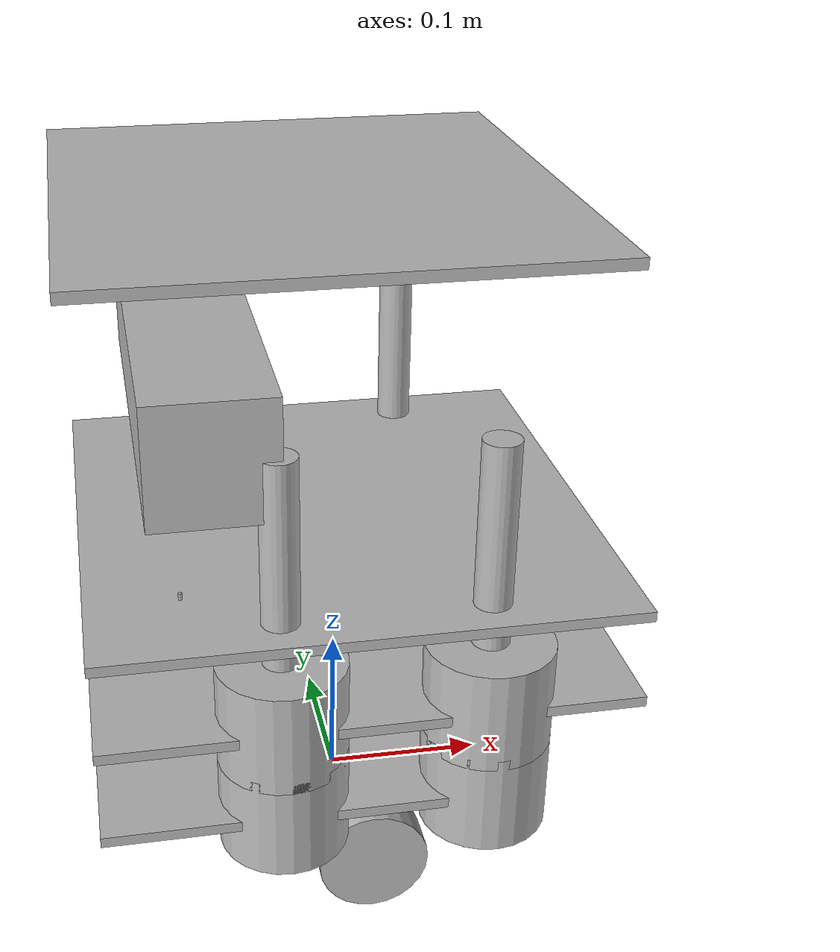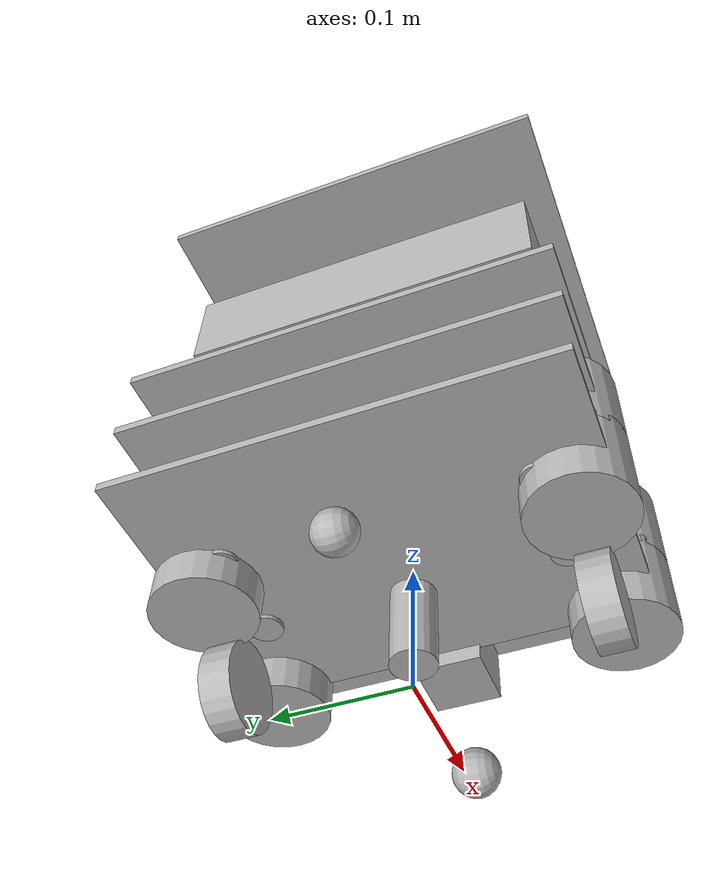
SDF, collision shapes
<?xml version="1.0" ?>
<sdf version="1.5">
  <model name="turtlebot">
    <link name="rack">
      <inertial>
        <pose>0.001453 -0.000453 0.029787 0 0 0</pose>
        <inertia>
          <ixx>0.058640</ixx>
          <ixy>0.000124</ixy>
          <ixz>0.000615</ixz>
          <iyy>0.058786</iyy>
          <iyz>0.000014</iyz>
          <izz>1.532440</izz>
        </inertia>
        <mass>2.234000</mass>
      </inertial>
      <collision name="plate_0_collision">
        <pose>-0.043340 0 0.084757 0 0 0</pose>
        <geometry>
          <box>
            <size>0.233502 0.314845 0.006401</size>
          </box>
        </geometry>
      </collision>
      <visual name="plate_0_visual">
        <pose>-0.043340 0 0.084757 0 0 0</pose>
        <geometry>
          <mesh>
            <uri>model://turtlebot/meshes/plate_0_logo.dae</uri>
          </mesh>
        </geometry>
      </visual>
      <collision name="plate_1_collision">
        <pose>-0.002660 0 0.141907 0 0 0</pose>
        <geometry>
          <box>
            <size>0.314856 0.314856 0.006401</size>
          </box>
        </geometry>
      </collision>
      <visual name="plate_1_visual">
        <pose>-0.002660 0 0.141907 0 0 0</pose>
        <geometry>
          <mesh>
            <uri>model://turtlebot/meshes/plate_1_logo.dae</uri>
          </mesh>
        </geometry>
      </visual>
      <collision name="plate_2_collision">
        <pose>-0.002660 0 0.199108 0 0 0</pose>
        <geometry>
          <box>
            <size>0.314856 0.314856 0.006401</size>
          </box>
        </geometry>
      </collision>
      <visual name="plate_2_visual">
        <pose>-0.002660 0 0.199108 0 0 0</pose>
        <geometry>
          <mesh>
            <uri>model://turtlebot/meshes/plate_1_logo.dae</uri>
          </mesh>
        </geometry>
      </visual>
      <collision name="plate_3_collision">
        <pose>-0.015820 0 0.405457 0 0 0</pose>
        <geometry>
          <box>
            <size>0.288000 0.315000 0.006401</size>
          </box>
        </geometry>
      </collision>
      <visual name="plate_3_visual">
        <pose>-0.015820 0 0.405457 0 0 0</pose>
        <geometry>
          <mesh>
            <uri>model://turtlebot/meshes/plate_2_logo.dae</uri>
          </mesh>
        </geometry>
      </visual>
      <collision name="spacer_0_collision">
        <pose>-0.002540 0.111468 0.079992 0 0 0</pose>
        <geometry>
          <cylinder>
            <radius>0.012700</radius>
            <length>0.003175</length>
          </cylinder>
        </geometry>
      </collision>
      <visual name="spacer_0_visual">
        <pose>-0.002540 0.111468 0.079992 0 0 0</pose>
        <geometry>
          <mesh>
            <uri>model://turtlebot/meshes/68-02403-125_Spacer.dae</uri>
          </mesh>
        </geometry>
      </visual>
      <collision name="spacer_1_collision">
        <pose>-0.002540 -0.111468 0.079992 0 0 0</pose>
        <geometry>
          <cylinder>
            <radius>0.012700</radius>
            <length>0.003175</length>
          </cylinder>
        </geometry>
      </collision>
      <visual name="spacer_1_visual">
        <pose>-0.002540 -0.111468 0.079992 0 0 0</pose>
        <geometry>
          <mesh>
            <uri>model://turtlebot/meshes/68-02403-125_Spacer.dae</uri>
          </mesh>
        </geometry>
      </visual>
      <collision name="spacer_2_collision">
        <pose>-0.072390 -0.111468 0.079992 0 0 0</pose>
        <geometry>
          <cylinder>
            <radius>0.012700</radius>
            <length>0.003175</length>
          </cylinder>
        </geometry>
      </collision>
      <visual name="spacer_2_visual">
        <pose>-0.072390 -0.111468 0.079992 0 0 0</pose>
        <geometry>
          <mesh>
            <uri>model://turtlebot/meshes/68-02403-125_Spacer.dae</uri>
          </mesh>
        </geometry>
      </visual>
      <collision name="spacer_3_collision">
        <pose>-0.072390 0.111468 0.079992 0 0 0</pose>
        <geometry>
          <cylinder>
            <radius>0.012700</radius>
            <length>0.003175</length>
          </cylinder>
        </geometry>
      </collision>
      <visual name="spacer_3_visual">
        <pose>-0.072390 0.111468 0.079992 0 0 0</pose>
        <geometry>
          <mesh>
            <uri>model://turtlebot/meshes/68-02403-125_Spacer.dae</uri>
          </mesh>
        </geometry>
      </visual>
      <collision name="standoff_2in_0_collision">
        <pose>0.067640 0.131420 0.087980 0 0 0</pose>
        <geometry>
          <cylinder>
            <radius>0.038100</radius>
            <length>0.063500</length>
          </cylinder>
        </geometry>
      </collision>
      <visual name="standoff_2in_0_visual">
        <pose>0.067640 0.131420 0.087980 0 0 0</pose>
        <geometry>
          <mesh>
            <uri>model://turtlebot/meshes/68-04552-2000-RA_Turtlebot_M-F_Standoff.dae</uri>
          </mesh>
        </geometry>
      </visual>
      <collision name="standoff_2in_1_collision">
        <pose>0.067640 -0.131420 0.087980 0 0 0</pose>
        <geometry>
          <cylinder>
            <radius>0.038100</radius>
            <length>0.063500</length>
          </cylinder>
        </geometry>
      </collision>
      <visual name="standoff_2in_1_visual">
        <pose>0.067640 -0.131420 0.087980 0 0 0</pose>
        <geometry>
          <mesh>
            <uri>model://turtlebot/meshes/68-04552-2000-RA_Turtlebot_M-F_Standoff.dae</uri>
          </mesh>
        </geometry>
      </visual>
      <collision name="standoff_2in_2_collision">
        <pose>-0.052832 -0.131420 0.087980 0 0 0</pose>
        <geometry>
          <cylinder>
            <radius>0.038100</radius>
            <length>0.063500</length>
          </cylinder>
        </geometry>
      </collision>
      <visual name="standoff_2in_2_visual">
        <pose>-0.052832 -0.131420 0.087980 0 0 0</pose>
        <geometry>
          <mesh>
            <uri>model://turtlebot/meshes/68-04552-2000-RA_Turtlebot_M-F_Standoff.dae</uri>
          </mesh>
        </geometry>
      </visual>
      <collision name="standoff_2in_3_collision">
        <pose>-0.052832 0.131420 0.087980 0 0 0</pose>
        <geometry>
          <cylinder>
            <radius>0.038100</radius>
            <length>0.063500</length>
          </cylinder>
        </geometry>
      </collision>
      <visual name="standoff_2in_3_visual">
        <pose>-0.052832 0.131420 0.087980 0 0 0</pose>
        <geometry>
          <mesh>
            <uri>model://turtlebot/meshes/68-04552-2000-RA_Turtlebot_M-F_Standoff.dae</uri>
          </mesh>
        </geometry>
      </visual>
      <collision name="standoff_2in_4_collision">
        <pose>0.067640 0.131420 0.145130 0 0 0</pose>
        <geometry>
          <cylinder>
            <radius>0.038100</radius>
            <length>0.063500</length>
          </cylinder>
        </geometry>
      </collision>
      <visual name="standoff_2in_4_visual">
        <pose>0.067640 0.131420 0.145130 0 0 0</pose>
        <geometry>
          <mesh>
            <uri>model://turtlebot/meshes/68-04552-2000-RA_Turtlebot_M-F_Standoff.dae</uri>
          </mesh>
        </geometry>
      </visual>
      <collision name="standoff_2in_5_collision">
        <pose>0.067640 -0.131420 0.145130 0 0 0</pose>
        <geometry>
          <cylinder>
            <radius>0.038100</radius>
            <length>0.063500</length>
          </cylinder>
        </geometry>
      </collision>
      <visual name="standoff_2in_5_visual">
        <pose>0.067640 -0.131420 0.145130 0 0 0</pose>
        <geometry>
          <mesh>
            <uri>model://turtlebot/meshes/68-04552-2000-RA_Turtlebot_M-F_Standoff.dae</uri>
          </mesh>
        </geometry>
      </visual>
      <collision name="standoff_2in_6_collision">
        <pose>-0.052832 -0.131420 0.145130 0 0 0</pose>
        <geometry>
          <cylinder>
            <radius>0.038100</radius>
            <length>0.063500</length>
          </cylinder>
        </geometry>
      </collision>
      <visual name="standoff_2in_6_visual">
        <pose>-0.052832 -0.131420 0.145130 0 0 0</pose>
        <geometry>
          <mesh>
            <uri>model://turtlebot/meshes/68-04552-2000-RA_Turtlebot_M-F_Standoff.dae</uri>
          </mesh>
        </geometry>
      </visual>
      <collision name="standoff_2in_7_collision">
        <pose>-0.052832 0.131420 0.145130 0 0 0</pose>
        <geometry>
          <cylinder>
            <radius>0.038100</radius>
            <length>0.063500</length>
          </cylinder>
        </geometry>
      </collision>
      <visual name="standoff_2in_7_visual">
        <pose>-0.052832 0.131420 0.145130 0 0 0</pose>
        <geometry>
          <mesh>
            <uri>model://turtlebot/meshes/68-04552-2000-RA_Turtlebot_M-F_Standoff.dae</uri>
          </mesh>
        </geometry>
      </visual>
      <collision name="standoff_8in_0_collision">
        <pose>0.067640 0.131420 0.202280 0 0 0</pose>
        <geometry>
          <cylinder>
            <radius>0.011113</radius>
            <length>0.203200</length>
          </cylinder>
        </geometry>
      </collision>
      <visual name="standoff_8in_0_visual">
        <pose>0.067640 0.131420 0.202280 0 0 0</pose>
        <geometry>
          <mesh>
            <uri>model://turtlebot/meshes/68-02421-8000-RA_Turtlebot_F-F_Standoff.dae</uri>
          </mesh>
        </geometry>
      </visual>
      <collision name="standoff_8in_1_collision">
        <pose>0.067640 -0.131420 0.202280 0 0 0</pose>
        <geometry>
          <cylinder>
            <radius>0.011113</radius>
            <length>0.203200</length>
          </cylinder>
        </geometry>
      </collision>
      <visual name="standoff_8in_1_visual">
        <pose>0.067640 -0.131420 0.202280 0 0 0</pose>
        <geometry>
          <mesh>
            <uri>model://turtlebot/meshes/68-02421-8000-RA_Turtlebot_F-F_Standoff.dae</uri>
          </mesh>
        </geometry>
      </visual>
      <collision name="standoff_8in_2_collision">
        <pose>-0.052832 -0.131420 0.202280 0 0 0</pose>
        <geometry>
          <cylinder>
            <radius>0.011113</radius>
            <length>0.203200</length>
          </cylinder>
        </geometry>
      </collision>
      <visual name="standoff_8in_2_visual">
        <pose>-0.052832 -0.131420 0.202280 0 0 0</pose>
        <geometry>
          <mesh>
            <uri>model://turtlebot/meshes/68-02421-8000-RA_Turtlebot_F-F_Standoff.dae</uri>
          </mesh>
        </geometry>
      </visual>
      <collision name="standoff_8in_3_collision">
        <pose>-0.052832 0.131420 0.202280 0 0 0</pose>
        <geometry>
          <cylinder>
            <radius>0.011113</radius>
            <length>0.203200</length>
          </cylinder>
        </geometry>
      </collision>
      <visual name="standoff_8in_3_visual">
        <pose>-0.052832 0.131420 0.202280 0 0 0</pose>
        <geometry>
          <mesh>
            <uri>model://turtlebot/meshes/68-02421-8000-RA_Turtlebot_F-F_Standoff.dae</uri>
          </mesh>
        </geometry>
      </visual>
      <collision name="standoff_kinect_0_collision">
        <pose>-0.105098 0.098000 0.202308 0 0 0</pose>
        <geometry>
          <cylinder>
            <radius>0.001111</radius>
            <length>0.008585</length>
          </cylinder>
        </geometry>
      </collision>
      <visual name="standoff_kinect_0_visual">
        <pose>-0.105098 0.098000 0.202308 0 0 0</pose>
        <geometry>
          <mesh>
            <uri>model://turtlebot/meshes/68-04556-RA_Kinect_Standoff_Assy.dae</uri>
          </mesh>
        </geometry>
      </visual>
      <collision name="standoff_kinect_1_collision">
        <pose>-0.105098 -0.098000 0.202308 0 0 0</pose>
        <geometry>
          <cylinder>
            <radius>0.001111</radius>
            <length>0.008585</length>
          </cylinder>
        </geometry>
      </collision>
      <visual name="standoff_kinect_1_visual">
        <pose>-0.105098 -0.098000 0.202308 0 0 0</pose>
        <geometry>
          <mesh>
            <uri>model://turtlebot/meshes/68-04556-RA_Kinect_Standoff_Assy.dae</uri>
          </mesh>
        </geometry>
      </visual>
      <sensor name="laser" type="ray">
        <pose>-0.065000 0 0.092000 0 0 0</pose>
        <ray>
          <scan>
            <horizontal>
              <samples>180</samples>
              <resolution>1.000000</resolution>
              <min_angle>-2.268928</min_angle>
              <max_angle>2.268928</max_angle>
            </horizontal>
          </scan>
          <range>
            <min>0.080000</min>
            <max>10</max>
            <resolution>0.010000</resolution>
          </range>
        </ray>
        <update_rate>20</update_rate>
      </sensor>
    </link>
    <include>
      <uri>model://create</uri>
    </include>
    <include>
      <uri>model://kinect</uri>
      <pose>-0.087098 0 0.303857 0 0 0</pose>
    </include>
    <joint name="create_rack" type="revolute">
      <parent>create::base</parent>
      <child>rack</child>
      <axis>
        <xyz>0 0 1</xyz>
        <limit>
          <lower>0</lower>
          <upper>0</upper>
        </limit>
        <use_parent_model_frame>true</use_parent_model_frame>
      </axis>
    </joint>
    <joint name="kinect_rack" type="revolute">
      <parent>kinect::link</parent>
      <child>rack</child>
      <axis>
        <xyz>0 0 1</xyz>
        <limit>
          <lower>0</lower>
          <upper>0</upper>
        </limit>
        <use_parent_model_frame>true</use_parent_model_frame>
      </axis>
    </joint>
    <include>
      <uri>model://hokuyo</uri>
      <pose>0.095 0.0 0.105 0 0 0</pose>
    </include>
    <joint name="hokuyo_joint" type="fixed">
      <child>hokuyo::link</child>
      <parent>create::base</parent>
    </joint>
  </model>
</sdf>

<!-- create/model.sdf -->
<sdf version="1.5">
  <model name="create">
    <link name="base">
      <inertial>
        <pose>0.001453 -0.000453 0.029787 0 0 0</pose>
        <inertia>
          <ixx>0.058640</ixx>
          <ixy>0.000124</ixy>
          <ixz>0.000615</ixz>
          <iyy>0.058786</iyy>
          <iyz>0.000014</iyz>
          <izz>1.532440</izz>
        </inertia>
        <mass>2.234000</mass>
      </inertial>
      <collision name="base_collision">
        <pose>0 0 0.047800 0 0 0</pose>
        <geometry>
          <cylinder>
            <radius>0.016495</radius>
            <length>0.061163</length>
          </cylinder>
        </geometry>
      </collision>
      <visual name="base_visual">
        <pose>0 0 0.047800 0 0 0</pose>
        <geometry>
          <mesh>
            <uri>model://create/meshes/create_body.dae</uri>
          </mesh>
        </geometry>
      </visual>
      <collision name="front_wheel_collision">
        <pose>0.130000 0 0.017000 0 1.570700 1.570700</pose>
        <geometry>
          <sphere>
            <radius>0.018000</radius>
          </sphere>
        </geometry>
        <surface>
          <friction>
            <ode>
              <mu>0</mu>
              <mu2>0</mu2>
              <fdir1>0 0 0</fdir1>
              <slip1>0</slip1>
              <slip2>0</slip2>
            </ode>
          </friction>
        </surface>
      </collision>
      <visual name="front_wheel_visual">
        <pose>0.130000 0 0.017000 0 1.570700 1.570700</pose>
        <geometry>
          <sphere>
            <radius>0.009000</radius>
          </sphere>
        </geometry>
      </visual>
      <collision name="rear_wheel_collision">
        <pose>-0.13 0 0.017 0 1.5707 1.5707</pose>
        <geometry>
          <sphere>
            <radius>0.015000</radius>
          </sphere>
        </geometry>
        <surface>
          <friction>
            <ode>
              <mu>0</mu>
              <mu2>0</mu2>
              <fdir1>0 0 0</fdir1>
              <slip1>0</slip1>
              <slip2>0</slip2>
            </ode>
          </friction>
        </surface>
      </collision>
      <visual name="rear_wheel_visual">
        <pose>-0.130000 0 0.017000 0 1.570700 1.570700</pose>
        <geometry>
          <sphere>
            <radius>0.007500</radius>
          </sphere>
        </geometry>
      </visual>
      <sensor name="left_cliff_sensor" type="ray">
        <pose>0.070000 0.140000 0.027000 0 1.570790 0</pose>
        <ray>
          <scan>
            <horizontal>
              <samples>1</samples>
              <resolution>1.000000</resolution>
              <min_angle>0</min_angle>
              <max_angle>0</max_angle>
            </horizontal>
          </scan>
          <range>
            <min>0.010000</min>
            <max>0.040000</max>
            <resolution>0.100000</resolution>
          </range>
        </ray>
      </sensor>
      <sensor name="leftfront_cliff_sensor" type="ray">
        <pose>0.150000 0.040000 0.027000 0 1.570790 0</pose>
        <ray>
          <scan>
            <horizontal>
              <samples>1</samples>
              <resolution>1.000000</resolution>
              <min_angle>0</min_angle>
              <max_angle>0</max_angle>
            </horizontal>
          </scan>
          <range>
            <min>0.010000</min>
            <max>0.040000</max>
            <resolution>0.100000</resolution>
          </range>
        </ray>
      </sensor>
      <sensor name="right_cliff_sensor" type="ray">
        <pose>0.070000 -0.140000 0.027000 0 1.570790 0</pose>
        <ray>
          <scan>
            <horizontal>
              <samples>1</samples>
              <resolution>1.000000</resolution>
              <min_angle>0</min_angle>
              <max_angle>0</max_angle>
            </horizontal>
          </scan>
          <range>
            <min>0.010000</min>
            <max>0.040000</max>
            <resolution>0.100000</resolution>
          </range>
        </ray>
      </sensor>
      <sensor name="rightfront_cliff_sensor" type="ray">
        <pose>0.150000 -0.040000 0.027000 0 1.570790 0</pose>
        <ray>
          <scan>
            <horizontal>
              <samples>1</samples>
              <resolution>1.000000</resolution>
              <min_angle>0</min_angle>
              <max_angle>0</max_angle>
            </horizontal>
          </scan>
          <range>
            <min>0.010000</min>
            <max>0.040000</max>
            <resolution>0.100000</resolution>
          </range>
        </ray>
      </sensor>
      <sensor name="wall_sensor" type="ray">
        <pose>0.090000 -0.120000 0.059000 0 0 -1.000000</pose>
        <ray>
          <scan>
            <horizontal>
              <samples>1</samples>
              <resolution>1.000000</resolution>
              <min_angle>0</min_angle>
              <max_angle>0</max_angle>
            </horizontal>
          </scan>
          <range>
            <min>0.016000</min>
            <max>0.040000</max>
            <resolution>0.100000</resolution>
          </range>
        </ray>
      </sensor>
    </link>
    <link name="left_wheel">
      <pose>0 0.130000 0.032000 0 0 0</pose>
      <inertial>
        <inertia>
          <ixx>0.001000</ixx>
          <ixy>0</ixy>
          <ixz>0</ixz>
          <iyy>0.001000</iyy>
          <iyz>0</iyz>
          <izz>0.001000</izz>
        </inertia>
        <mass>0.010000</mass>
      </inertial>
      <collision name="collision">
        <pose>0 0 0 0 1.570700 1.570700</pose>
        <geometry>
          <cylinder>
            <radius>0.033000</radius>
            <length>0.023000</length>
          </cylinder>
        </geometry>
        <surface>
          <friction>
            <ode>
              <mu>15</mu>
              <mu2>15</mu2>
              <fdir1>0 0 0</fdir1>
              <slip1>0</slip1>
              <slip2>0</slip2>
            </ode>
          </friction>
        </surface>
      </collision>
      <visual name="visual">
        <pose>0 0 0 0 1.570700 1.570700</pose>
        <geometry>
          <cylinder>
            <radius>0.033000</radius>
            <length>0.023000</length>
          </cylinder>
        </geometry>
      </visual>
    </link>
    <link name="right_wheel">
      <pose>0 -0.130000 0.032000 0 0 0</pose>
      <inertial>
        <inertia>
          <ixx>0.001000</ixx>
          <ixy>0</ixy>
          <ixz>0</ixz>
          <iyy>0.001000</iyy>
          <iyz>0</iyz>
          <izz>0.001000</izz>
        </inertia>
        <mass>0.010000</mass>
      </inertial>
      <collision name="collision">
        <pose>0 0 0 0 1.570700 1.570700</pose>
        <geometry>
          <cylinder>
            <radius>0.033000</radius>
            <length>0.023000</length>
          </cylinder>
        </geometry>
        <surface>
          <friction>
            <ode>
              <mu>15</mu>
              <mu2>15</mu2>
              <fdir1>0 0 0</fdir1>
              <slip1>0</slip1>
              <slip2>0</slip2>
            </ode>
          </friction>
        </surface>
      </collision>
      <visual name="visual">
        <pose>0 0 0 0 1.570700 1.570700</pose>
        <geometry>
          <cylinder>
            <radius>0.033000</radius>
            <length>0.023000</length>
          </cylinder>
        </geometry>
      </visual>
    </link>
    <joint name="left_wheel_joint" type="revolute">
      <parent>base</parent>
      <child>left_wheel</child>
      <axis>
        <xyz>0 1 0</xyz>
        <use_parent_model_frame>true</use_parent_model_frame>
      </axis>
    </joint>
    <joint name="right_wheel_joint" type="revolute">
      <parent>base</parent>
      <child>right_wheel</child>
      <axis>
        <xyz>0 1 0</xyz>
        <use_parent_model_frame>true</use_parent_model_frame>
      </axis>
    </joint>

  <plugin name="diff_drive" filename="libgazebo_ros_diff_drive.so">
    <update_rate>30</update_rate>

    <!-- wheels -->
    <left_joint>left_wheel_joint</left_joint>
    <right_joint>right_wheel_joint</right_joint>

    <wheel_separation>0.26</wheel_separation>
    <wheel_diameter>0.066</wheel_diameter>
    <max_wheel_torque>20</max_wheel_torque>
    <max_wheel_acceleration>1.2</max_wheel_acceleration>

    <!-- Receive velocity commands on this ROS topic -->
    <command_topic>cmd_vel</command_topic>
    <publish_odom>false</publish_odom>
    <publish_odom_tf>true</publish_odom_tf>
    <publish_wheel_tf>false</publish_wheel_tf>

    <odometry_topic>odom</odometry_topic>
    <odometry_frame>odom</odometry_frame>
    <robot_base_frame>base_footprint</robot_base_frame>

    <!-- Odometry source, 0 for ENCODER, 1 for WORLD, defaults to WORLD -->

    <!-- Change the ROS topic we will publish the odometry data to -->
  </plugin>
  </model>
</sdf>

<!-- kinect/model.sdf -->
<sdf version="1.5">
  <model name="kinect">
    <pose>0 0 0.036 0 0 0</pose>
    <link name="link">
      <inertial>
        <mass>0.1</mass>
      </inertial>
      <collision name="collision">
        <geometry>
          <box>
            <size>0.073000 0.276000 0.072000</size>
          </box>
        </geometry>
      </collision>
      <visual name="visual">
        <geometry>
          <mesh>
            <uri>model://kinect/meshes/kinect.dae</uri>
          </mesh>
        </geometry>
      </visual>
      <sensor name="camera" type="depth">
        <update_rate>20</update_rate>
        <camera>
          <horizontal_fov>1.047198</horizontal_fov>
          <image>
            <width>640</width>
            <height>480</height>
            <format>R8G8B8</format>
          </image>
          <clip>
            <near>0.05</near>
            <far>3</far>
          </clip>
        </camera>
        <plugin name="camera_controller" filename="libgazebo_ros_camera.so">
          <alwaysOn>true</alwaysOn>
          <updateRate>0.0</updateRate>
          <cameraName>kinect</cameraName>
          <imageTopicName>image_raw</imageTopicName>
          <cameraInfoTopicName>camera_info</cameraInfoTopicName>
          <frameName>camera_link</frameName>
          <hackBaseline>0.07</hackBaseline>
          <distortionK1>0.0</distortionK1>
          <distortionK2>0.0</distortionK2>
          <distortionK3>0.0</distortionK3>
          <distortionT1>0.0</distortionT1>
          <distortionT2>0.0</distortionT2>
        </plugin>
      </sensor>
    </link>
  </model>
</sdf>

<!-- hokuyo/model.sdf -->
<sdf version="1.5">
  <model name="hokuyo">
    <pose>0 0 0.035 0 0 0</pose>
    <link name="link">
      <inertial>
        <mass>0.1</mass>
      </inertial>
      <visual name="visual">
        <geometry>
          <mesh>
            <uri>model://hokuyo/meshes/hokuyo.dae</uri>
          </mesh>
        </geometry>
      </visual>
      <collision name="collision-base">
        <pose>0 0 -0.0145 0 0 0</pose>
        <geometry>
          <box>
            <size>0.05 0.05 0.041</size>
          </box>
        </geometry>
      </collision>
      <collision name="collision-top">
        <pose>0 0 0.0205 0 0 0</pose>
        <geometry>
          <cylinder>
            <radius>0.021</radius>
            <length>0.029</length>
          </cylinder>
        </geometry>
      </collision>
      <sensor name="laser" type="ray">
        <pose>0.01 0 0.0175 0 -0 0</pose>
        <ray>
          <scan>
            <horizontal>
              <samples>640</samples>
              <resolution>1</resolution>
              <min_angle>-2.26889</min_angle>
              <max_angle>2.268899</max_angle>
            </horizontal>
          </scan>
          <range>
            <min>0.08</min>
            <max>10</max>
            <resolution>0.01</resolution>
          </range>
        </ray>
        <plugin name="lidar_controller" filename="libgazebo_ros_ray_sensor.so">
          <ros>
            <remapping>~/out:=scan</remapping>
          </ros>
          <output_type>sensor_msgs/LaserScan</output_type>
          <frame_name>laser_link</frame_name>
        </plugin>
        <always_on>1</always_on>
        <update_rate>30</update_rate>
        <visualize>true</visualize>
      </sensor>
    </link>
  </model>
</sdf>
